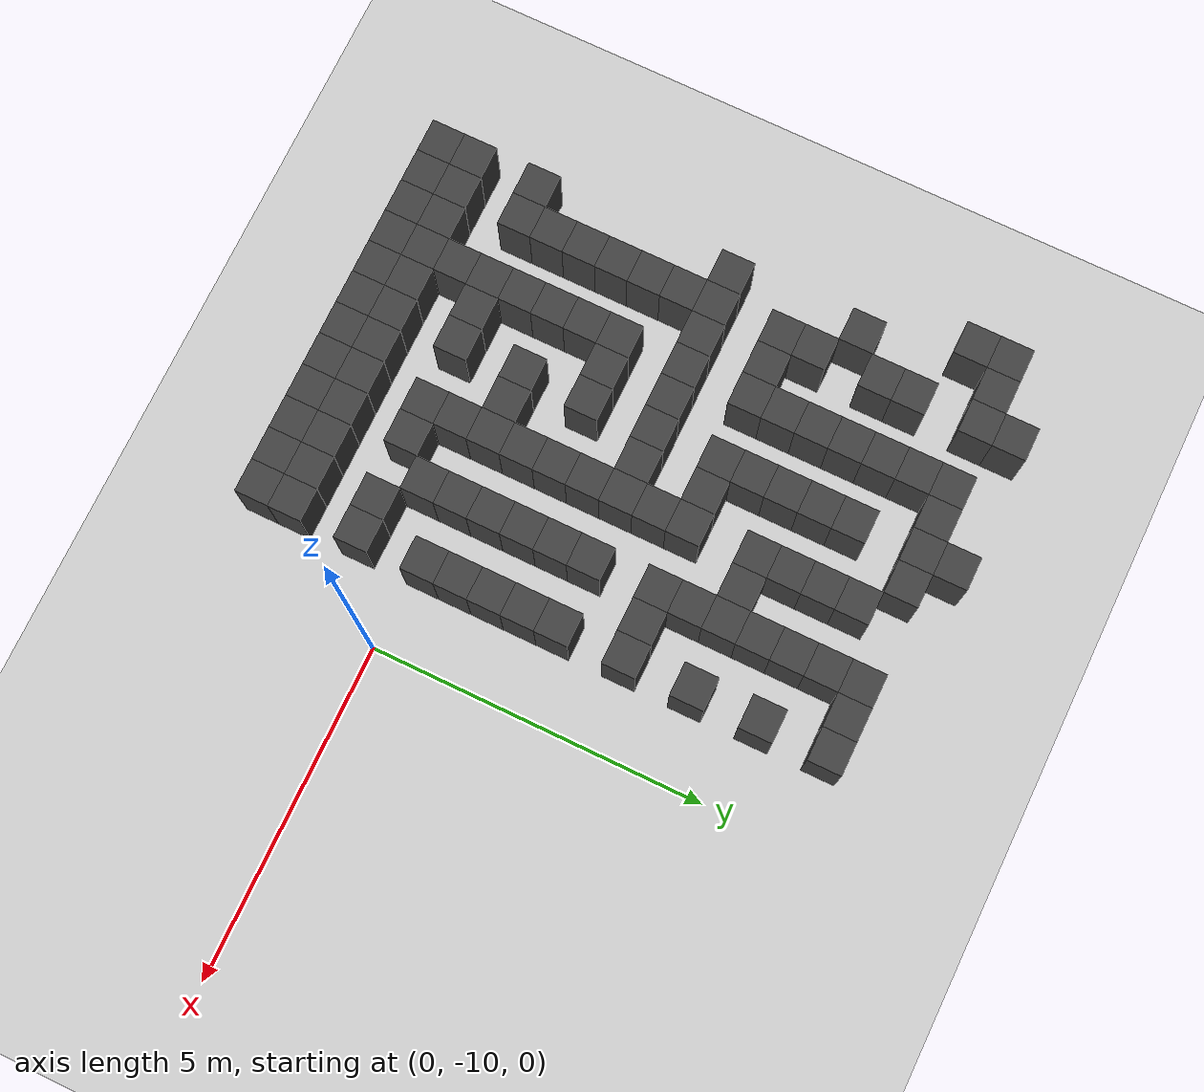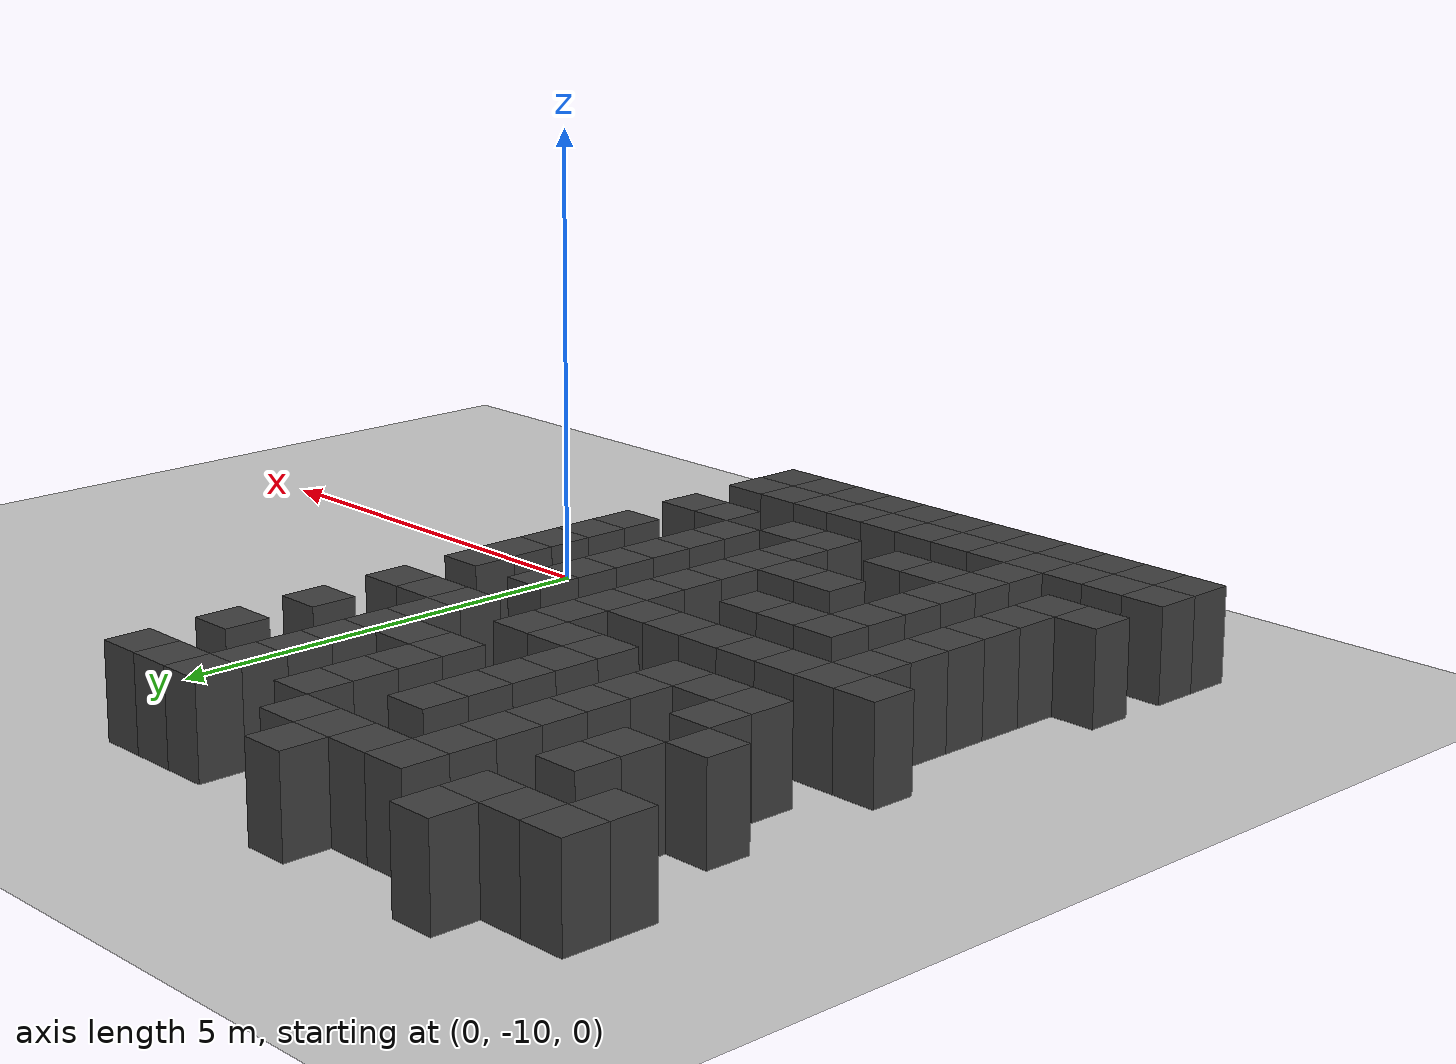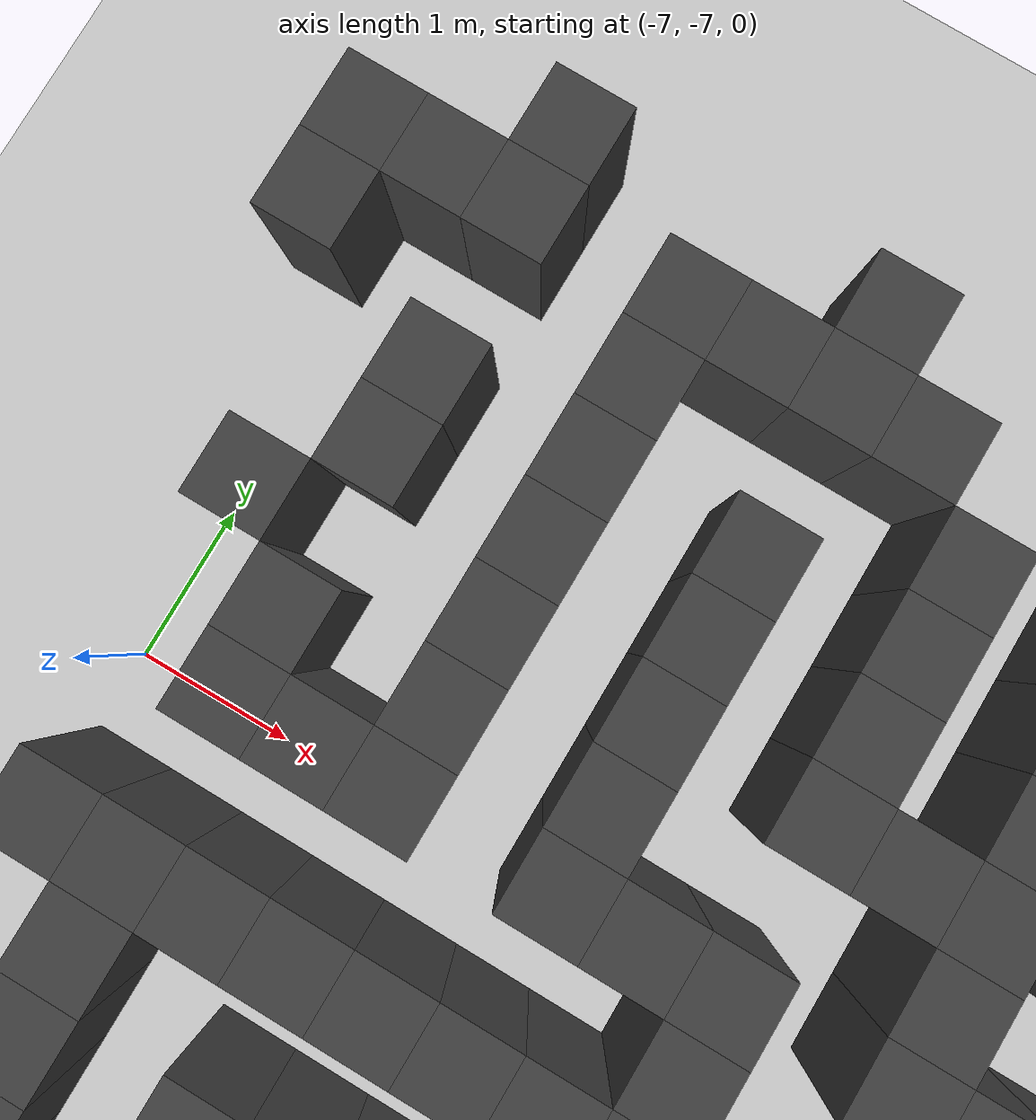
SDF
<sdf version="1.7">
 <world name="map_18814">
  <model name="ground_plane">
   <static>true</static>
   <link name="link">
    <collision name="collision">
     <geometry><plane><normal>0 0 1</normal><size>200 200</size></plane></geometry>
    </collision>
    <visual name="visual">
     <geometry><plane><normal>0 0 1</normal><size>200 200</size></plane></geometry>
     <material><ambient>0.8 0.8 0.8 1</ambient><diffuse>0.8 0.8 0.8 1</diffuse></material>
    </visual>
   </link>
  </model>
  <model name="maze_environment">
   <static>true</static>
   <link name="wall_803">
    <pose>-6.250 -3.250 0.500 0 0 0</pose>
    <collision name="col"><geometry><box><size>0.5 0.5 1.0</size></box></geometry></collision>
    <visual name="vis">
     <geometry><box><size>0.5 0.5 1.0</size></box></geometry>
     <material><ambient>0.15 0.15 0.15 1</ambient><diffuse>0.25 0.25 0.25 1</diffuse></material>
    </visual>
   </link>
   <link name="wall_804">
    <pose>-4.250 -3.250 0.500 0 0 0</pose>
    <collision name="col"><geometry><box><size>0.5 0.5 1.0</size></box></geometry></collision>
    <visual name="vis">
     <geometry><box><size>0.5 0.5 1.0</size></box></geometry>
     <material><ambient>0.15 0.15 0.15 1</ambient><diffuse>0.25 0.25 0.25 1</diffuse></material>
    </visual>
   </link>
   <link name="wall_819">
    <pose>-7.250 -3.750 0.500 0 0 0</pose>
    <collision name="col"><geometry><box><size>0.5 0.5 1.0</size></box></geometry></collision>
    <visual name="vis">
     <geometry><box><size>0.5 0.5 1.0</size></box></geometry>
     <material><ambient>0.15 0.15 0.15 1</ambient><diffuse>0.25 0.25 0.25 1</diffuse></material>
    </visual>
   </link>
   <link name="wall_820">
    <pose>-6.750 -3.750 0.500 0 0 0</pose>
    <collision name="col"><geometry><box><size>0.5 0.5 1.0</size></box></geometry></collision>
    <visual name="vis">
     <geometry><box><size>0.5 0.5 1.0</size></box></geometry>
     <material><ambient>0.15 0.15 0.15 1</ambient><diffuse>0.25 0.25 0.25 1</diffuse></material>
    </visual>
   </link>
   <link name="wall_821">
    <pose>-6.250 -3.750 0.500 0 0 0</pose>
    <collision name="col"><geometry><box><size>0.5 0.5 1.0</size></box></geometry></collision>
    <visual name="vis">
     <geometry><box><size>0.5 0.5 1.0</size></box></geometry>
     <material><ambient>0.15 0.15 0.15 1</ambient><diffuse>0.25 0.25 0.25 1</diffuse></material>
    </visual>
   </link>
   <link name="wall_822">
    <pose>-5.250 -3.750 0.500 0 0 0</pose>
    <collision name="col"><geometry><box><size>0.5 0.5 1.0</size></box></geometry></collision>
    <visual name="vis">
     <geometry><box><size>0.5 0.5 1.0</size></box></geometry>
     <material><ambient>0.15 0.15 0.15 1</ambient><diffuse>0.25 0.25 0.25 1</diffuse></material>
    </visual>
   </link>
   <link name="wall_823">
    <pose>-4.750 -3.750 0.500 0 0 0</pose>
    <collision name="col"><geometry><box><size>0.5 0.5 1.0</size></box></geometry></collision>
    <visual name="vis">
     <geometry><box><size>0.5 0.5 1.0</size></box></geometry>
     <material><ambient>0.15 0.15 0.15 1</ambient><diffuse>0.25 0.25 0.25 1</diffuse></material>
    </visual>
   </link>
   <link name="wall_824">
    <pose>-4.250 -3.750 0.500 0 0 0</pose>
    <collision name="col"><geometry><box><size>0.5 0.5 1.0</size></box></geometry></collision>
    <visual name="vis">
     <geometry><box><size>0.5 0.5 1.0</size></box></geometry>
     <material><ambient>0.15 0.15 0.15 1</ambient><diffuse>0.25 0.25 0.25 1</diffuse></material>
    </visual>
   </link>
   <link name="wall_825">
    <pose>-3.750 -3.750 0.500 0 0 0</pose>
    <collision name="col"><geometry><box><size>0.5 0.5 1.0</size></box></geometry></collision>
    <visual name="vis">
     <geometry><box><size>0.5 0.5 1.0</size></box></geometry>
     <material><ambient>0.15 0.15 0.15 1</ambient><diffuse>0.25 0.25 0.25 1</diffuse></material>
    </visual>
   </link>
   <link name="wall_826">
    <pose>-2.250 -3.750 0.500 0 0 0</pose>
    <collision name="col"><geometry><box><size>0.5 0.5 1.0</size></box></geometry></collision>
    <visual name="vis">
     <geometry><box><size>0.5 0.5 1.0</size></box></geometry>
     <material><ambient>0.15 0.15 0.15 1</ambient><diffuse>0.25 0.25 0.25 1</diffuse></material>
    </visual>
   </link>
   <link name="wall_827">
    <pose>-1.750 -3.750 0.500 0 0 0</pose>
    <collision name="col"><geometry><box><size>0.5 0.5 1.0</size></box></geometry></collision>
    <visual name="vis">
     <geometry><box><size>0.5 0.5 1.0</size></box></geometry>
     <material><ambient>0.15 0.15 0.15 1</ambient><diffuse>0.25 0.25 0.25 1</diffuse></material>
    </visual>
   </link>
   <link name="wall_828">
    <pose>-1.250 -3.750 0.500 0 0 0</pose>
    <collision name="col"><geometry><box><size>0.5 0.5 1.0</size></box></geometry></collision>
    <visual name="vis">
     <geometry><box><size>0.5 0.5 1.0</size></box></geometry>
     <material><ambient>0.15 0.15 0.15 1</ambient><diffuse>0.25 0.25 0.25 1</diffuse></material>
    </visual>
   </link>
   <link name="wall_852">
    <pose>-7.250 -4.250 0.500 0 0 0</pose>
    <collision name="col"><geometry><box><size>0.5 0.5 1.0</size></box></geometry></collision>
    <visual name="vis">
     <geometry><box><size>0.5 0.5 1.0</size></box></geometry>
     <material><ambient>0.15 0.15 0.15 1</ambient><diffuse>0.25 0.25 0.25 1</diffuse></material>
    </visual>
   </link>
   <link name="wall_853">
    <pose>-5.250 -4.250 0.500 0 0 0</pose>
    <collision name="col"><geometry><box><size>0.5 0.5 1.0</size></box></geometry></collision>
    <visual name="vis">
     <geometry><box><size>0.5 0.5 1.0</size></box></geometry>
     <material><ambient>0.15 0.15 0.15 1</ambient><diffuse>0.25 0.25 0.25 1</diffuse></material>
    </visual>
   </link>
   <link name="wall_854">
    <pose>-3.250 -4.250 0.500 0 0 0</pose>
    <collision name="col"><geometry><box><size>0.5 0.5 1.0</size></box></geometry></collision>
    <visual name="vis">
     <geometry><box><size>0.5 0.5 1.0</size></box></geometry>
     <material><ambient>0.15 0.15 0.15 1</ambient><diffuse>0.25 0.25 0.25 1</diffuse></material>
    </visual>
   </link>
   <link name="wall_855">
    <pose>-2.250 -4.250 0.500 0 0 0</pose>
    <collision name="col"><geometry><box><size>0.5 0.5 1.0</size></box></geometry></collision>
    <visual name="vis">
     <geometry><box><size>0.5 0.5 1.0</size></box></geometry>
     <material><ambient>0.15 0.15 0.15 1</ambient><diffuse>0.25 0.25 0.25 1</diffuse></material>
    </visual>
   </link>
   <link name="wall_872">
    <pose>-6.250 -4.750 0.500 0 0 0</pose>
    <collision name="col"><geometry><box><size>0.5 0.5 1.0</size></box></geometry></collision>
    <visual name="vis">
     <geometry><box><size>0.5 0.5 1.0</size></box></geometry>
     <material><ambient>0.15 0.15 0.15 1</ambient><diffuse>0.25 0.25 0.25 1</diffuse></material>
    </visual>
   </link>
   <link name="wall_873">
    <pose>-5.250 -4.750 0.500 0 0 0</pose>
    <collision name="col"><geometry><box><size>0.5 0.5 1.0</size></box></geometry></collision>
    <visual name="vis">
     <geometry><box><size>0.5 0.5 1.0</size></box></geometry>
     <material><ambient>0.15 0.15 0.15 1</ambient><diffuse>0.25 0.25 0.25 1</diffuse></material>
    </visual>
   </link>
   <link name="wall_874">
    <pose>-4.250 -4.750 0.500 0 0 0</pose>
    <collision name="col"><geometry><box><size>0.5 0.5 1.0</size></box></geometry></collision>
    <visual name="vis">
     <geometry><box><size>0.5 0.5 1.0</size></box></geometry>
     <material><ambient>0.15 0.15 0.15 1</ambient><diffuse>0.25 0.25 0.25 1</diffuse></material>
    </visual>
   </link>
   <link name="wall_875">
    <pose>-3.250 -4.750 0.500 0 0 0</pose>
    <collision name="col"><geometry><box><size>0.5 0.5 1.0</size></box></geometry></collision>
    <visual name="vis">
     <geometry><box><size>0.5 0.5 1.0</size></box></geometry>
     <material><ambient>0.15 0.15 0.15 1</ambient><diffuse>0.25 0.25 0.25 1</diffuse></material>
    </visual>
   </link>
   <link name="wall_876">
    <pose>-2.250 -4.750 0.500 0 0 0</pose>
    <collision name="col"><geometry><box><size>0.5 0.5 1.0</size></box></geometry></collision>
    <visual name="vis">
     <geometry><box><size>0.5 0.5 1.0</size></box></geometry>
     <material><ambient>0.15 0.15 0.15 1</ambient><diffuse>0.25 0.25 0.25 1</diffuse></material>
    </visual>
   </link>
   <link name="wall_877">
    <pose>-1.250 -4.750 0.500 0 0 0</pose>
    <collision name="col"><geometry><box><size>0.5 0.5 1.0</size></box></geometry></collision>
    <visual name="vis">
     <geometry><box><size>0.5 0.5 1.0</size></box></geometry>
     <material><ambient>0.15 0.15 0.15 1</ambient><diffuse>0.25 0.25 0.25 1</diffuse></material>
    </visual>
   </link>
   <link name="wall_903">
    <pose>-6.250 -5.250 0.500 0 0 0</pose>
    <collision name="col"><geometry><box><size>0.5 0.5 1.0</size></box></geometry></collision>
    <visual name="vis">
     <geometry><box><size>0.5 0.5 1.0</size></box></geometry>
     <material><ambient>0.15 0.15 0.15 1</ambient><diffuse>0.25 0.25 0.25 1</diffuse></material>
    </visual>
   </link>
   <link name="wall_904">
    <pose>-5.250 -5.250 0.500 0 0 0</pose>
    <collision name="col"><geometry><box><size>0.5 0.5 1.0</size></box></geometry></collision>
    <visual name="vis">
     <geometry><box><size>0.5 0.5 1.0</size></box></geometry>
     <material><ambient>0.15 0.15 0.15 1</ambient><diffuse>0.25 0.25 0.25 1</diffuse></material>
    </visual>
   </link>
   <link name="wall_905">
    <pose>-4.250 -5.250 0.500 0 0 0</pose>
    <collision name="col"><geometry><box><size>0.5 0.5 1.0</size></box></geometry></collision>
    <visual name="vis">
     <geometry><box><size>0.5 0.5 1.0</size></box></geometry>
     <material><ambient>0.15 0.15 0.15 1</ambient><diffuse>0.25 0.25 0.25 1</diffuse></material>
    </visual>
   </link>
   <link name="wall_906">
    <pose>-3.250 -5.250 0.500 0 0 0</pose>
    <collision name="col"><geometry><box><size>0.5 0.5 1.0</size></box></geometry></collision>
    <visual name="vis">
     <geometry><box><size>0.5 0.5 1.0</size></box></geometry>
     <material><ambient>0.15 0.15 0.15 1</ambient><diffuse>0.25 0.25 0.25 1</diffuse></material>
    </visual>
   </link>
   <link name="wall_907">
    <pose>-2.250 -5.250 0.500 0 0 0</pose>
    <collision name="col"><geometry><box><size>0.5 0.5 1.0</size></box></geometry></collision>
    <visual name="vis">
     <geometry><box><size>0.5 0.5 1.0</size></box></geometry>
     <material><ambient>0.15 0.15 0.15 1</ambient><diffuse>0.25 0.25 0.25 1</diffuse></material>
    </visual>
   </link>
   <link name="wall_921">
    <pose>-6.750 -5.750 0.500 0 0 0</pose>
    <collision name="col"><geometry><box><size>0.5 0.5 1.0</size></box></geometry></collision>
    <visual name="vis">
     <geometry><box><size>0.5 0.5 1.0</size></box></geometry>
     <material><ambient>0.15 0.15 0.15 1</ambient><diffuse>0.25 0.25 0.25 1</diffuse></material>
    </visual>
   </link>
   <link name="wall_922">
    <pose>-5.250 -5.750 0.500 0 0 0</pose>
    <collision name="col"><geometry><box><size>0.5 0.5 1.0</size></box></geometry></collision>
    <visual name="vis">
     <geometry><box><size>0.5 0.5 1.0</size></box></geometry>
     <material><ambient>0.15 0.15 0.15 1</ambient><diffuse>0.25 0.25 0.25 1</diffuse></material>
    </visual>
   </link>
   <link name="wall_923">
    <pose>-4.250 -5.750 0.500 0 0 0</pose>
    <collision name="col"><geometry><box><size>0.5 0.5 1.0</size></box></geometry></collision>
    <visual name="vis">
     <geometry><box><size>0.5 0.5 1.0</size></box></geometry>
     <material><ambient>0.15 0.15 0.15 1</ambient><diffuse>0.25 0.25 0.25 1</diffuse></material>
    </visual>
   </link>
   <link name="wall_924">
    <pose>-3.250 -5.750 0.500 0 0 0</pose>
    <collision name="col"><geometry><box><size>0.5 0.5 1.0</size></box></geometry></collision>
    <visual name="vis">
     <geometry><box><size>0.5 0.5 1.0</size></box></geometry>
     <material><ambient>0.15 0.15 0.15 1</ambient><diffuse>0.25 0.25 0.25 1</diffuse></material>
    </visual>
   </link>
   <link name="wall_925">
    <pose>-2.750 -5.750 0.500 0 0 0</pose>
    <collision name="col"><geometry><box><size>0.5 0.5 1.0</size></box></geometry></collision>
    <visual name="vis">
     <geometry><box><size>0.5 0.5 1.0</size></box></geometry>
     <material><ambient>0.15 0.15 0.15 1</ambient><diffuse>0.25 0.25 0.25 1</diffuse></material>
    </visual>
   </link>
   <link name="wall_926">
    <pose>-2.250 -5.750 0.500 0 0 0</pose>
    <collision name="col"><geometry><box><size>0.5 0.5 1.0</size></box></geometry></collision>
    <visual name="vis">
     <geometry><box><size>0.5 0.5 1.0</size></box></geometry>
     <material><ambient>0.15 0.15 0.15 1</ambient><diffuse>0.25 0.25 0.25 1</diffuse></material>
    </visual>
   </link>
   <link name="wall_927">
    <pose>-1.250 -5.750 0.500 0 0 0</pose>
    <collision name="col"><geometry><box><size>0.5 0.5 1.0</size></box></geometry></collision>
    <visual name="vis">
     <geometry><box><size>0.5 0.5 1.0</size></box></geometry>
     <material><ambient>0.15 0.15 0.15 1</ambient><diffuse>0.25 0.25 0.25 1</diffuse></material>
    </visual>
   </link>
   <link name="wall_954">
    <pose>-6.250 -6.250 0.500 0 0 0</pose>
    <collision name="col"><geometry><box><size>0.5 0.5 1.0</size></box></geometry></collision>
    <visual name="vis">
     <geometry><box><size>0.5 0.5 1.0</size></box></geometry>
     <material><ambient>0.15 0.15 0.15 1</ambient><diffuse>0.25 0.25 0.25 1</diffuse></material>
    </visual>
   </link>
   <link name="wall_955">
    <pose>-5.250 -6.250 0.500 0 0 0</pose>
    <collision name="col"><geometry><box><size>0.5 0.5 1.0</size></box></geometry></collision>
    <visual name="vis">
     <geometry><box><size>0.5 0.5 1.0</size></box></geometry>
     <material><ambient>0.15 0.15 0.15 1</ambient><diffuse>0.25 0.25 0.25 1</diffuse></material>
    </visual>
   </link>
   <link name="wall_956">
    <pose>-4.250 -6.250 0.500 0 0 0</pose>
    <collision name="col"><geometry><box><size>0.5 0.5 1.0</size></box></geometry></collision>
    <visual name="vis">
     <geometry><box><size>0.5 0.5 1.0</size></box></geometry>
     <material><ambient>0.15 0.15 0.15 1</ambient><diffuse>0.25 0.25 0.25 1</diffuse></material>
    </visual>
   </link>
   <link name="wall_957">
    <pose>-2.250 -6.250 0.500 0 0 0</pose>
    <collision name="col"><geometry><box><size>0.5 0.5 1.0</size></box></geometry></collision>
    <visual name="vis">
     <geometry><box><size>0.5 0.5 1.0</size></box></geometry>
     <material><ambient>0.15 0.15 0.15 1</ambient><diffuse>0.25 0.25 0.25 1</diffuse></material>
    </visual>
   </link>
   <link name="wall_973">
    <pose>-6.250 -6.750 0.500 0 0 0</pose>
    <collision name="col"><geometry><box><size>0.5 0.5 1.0</size></box></geometry></collision>
    <visual name="vis">
     <geometry><box><size>0.5 0.5 1.0</size></box></geometry>
     <material><ambient>0.15 0.15 0.15 1</ambient><diffuse>0.25 0.25 0.25 1</diffuse></material>
    </visual>
   </link>
   <link name="wall_974">
    <pose>-5.750 -6.750 0.500 0 0 0</pose>
    <collision name="col"><geometry><box><size>0.5 0.5 1.0</size></box></geometry></collision>
    <visual name="vis">
     <geometry><box><size>0.5 0.5 1.0</size></box></geometry>
     <material><ambient>0.15 0.15 0.15 1</ambient><diffuse>0.25 0.25 0.25 1</diffuse></material>
    </visual>
   </link>
   <link name="wall_975">
    <pose>-5.250 -6.750 0.500 0 0 0</pose>
    <collision name="col"><geometry><box><size>0.5 0.5 1.0</size></box></geometry></collision>
    <visual name="vis">
     <geometry><box><size>0.5 0.5 1.0</size></box></geometry>
     <material><ambient>0.15 0.15 0.15 1</ambient><diffuse>0.25 0.25 0.25 1</diffuse></material>
    </visual>
   </link>
   <link name="wall_976">
    <pose>-4.250 -6.750 0.500 0 0 0</pose>
    <collision name="col"><geometry><box><size>0.5 0.5 1.0</size></box></geometry></collision>
    <visual name="vis">
     <geometry><box><size>0.5 0.5 1.0</size></box></geometry>
     <material><ambient>0.15 0.15 0.15 1</ambient><diffuse>0.25 0.25 0.25 1</diffuse></material>
    </visual>
   </link>
   <link name="wall_977">
    <pose>-3.750 -6.750 0.500 0 0 0</pose>
    <collision name="col"><geometry><box><size>0.5 0.5 1.0</size></box></geometry></collision>
    <visual name="vis">
     <geometry><box><size>0.5 0.5 1.0</size></box></geometry>
     <material><ambient>0.15 0.15 0.15 1</ambient><diffuse>0.25 0.25 0.25 1</diffuse></material>
    </visual>
   </link>
   <link name="wall_978">
    <pose>-3.250 -6.750 0.500 0 0 0</pose>
    <collision name="col"><geometry><box><size>0.5 0.5 1.0</size></box></geometry></collision>
    <visual name="vis">
     <geometry><box><size>0.5 0.5 1.0</size></box></geometry>
     <material><ambient>0.15 0.15 0.15 1</ambient><diffuse>0.25 0.25 0.25 1</diffuse></material>
    </visual>
   </link>
   <link name="wall_979">
    <pose>-2.250 -6.750 0.500 0 0 0</pose>
    <collision name="col"><geometry><box><size>0.5 0.5 1.0</size></box></geometry></collision>
    <visual name="vis">
     <geometry><box><size>0.5 0.5 1.0</size></box></geometry>
     <material><ambient>0.15 0.15 0.15 1</ambient><diffuse>0.25 0.25 0.25 1</diffuse></material>
    </visual>
   </link>
   <link name="wall_980">
    <pose>-1.750 -6.750 0.500 0 0 0</pose>
    <collision name="col"><geometry><box><size>0.5 0.5 1.0</size></box></geometry></collision>
    <visual name="vis">
     <geometry><box><size>0.5 0.5 1.0</size></box></geometry>
     <material><ambient>0.15 0.15 0.15 1</ambient><diffuse>0.25 0.25 0.25 1</diffuse></material>
    </visual>
   </link>
   <link name="wall_981">
    <pose>-1.250 -6.750 0.500 0 0 0</pose>
    <collision name="col"><geometry><box><size>0.5 0.5 1.0</size></box></geometry></collision>
    <visual name="vis">
     <geometry><box><size>0.5 0.5 1.0</size></box></geometry>
     <material><ambient>0.15 0.15 0.15 1</ambient><diffuse>0.25 0.25 0.25 1</diffuse></material>
    </visual>
   </link>
   <link name="wall_1005">
    <pose>-3.250 -7.250 0.500 0 0 0</pose>
    <collision name="col"><geometry><box><size>0.5 0.5 1.0</size></box></geometry></collision>
    <visual name="vis">
     <geometry><box><size>0.5 0.5 1.0</size></box></geometry>
     <material><ambient>0.15 0.15 0.15 1</ambient><diffuse>0.25 0.25 0.25 1</diffuse></material>
    </visual>
   </link>
   <link name="wall_1023">
    <pose>-6.750 -7.750 0.500 0 0 0</pose>
    <collision name="col"><geometry><box><size>0.5 0.5 1.0</size></box></geometry></collision>
    <visual name="vis">
     <geometry><box><size>0.5 0.5 1.0</size></box></geometry>
     <material><ambient>0.15 0.15 0.15 1</ambient><diffuse>0.25 0.25 0.25 1</diffuse></material>
    </visual>
   </link>
   <link name="wall_1024">
    <pose>-6.250 -7.750 0.500 0 0 0</pose>
    <collision name="col"><geometry><box><size>0.5 0.5 1.0</size></box></geometry></collision>
    <visual name="vis">
     <geometry><box><size>0.5 0.5 1.0</size></box></geometry>
     <material><ambient>0.15 0.15 0.15 1</ambient><diffuse>0.25 0.25 0.25 1</diffuse></material>
    </visual>
   </link>
   <link name="wall_1025">
    <pose>-5.750 -7.750 0.500 0 0 0</pose>
    <collision name="col"><geometry><box><size>0.5 0.5 1.0</size></box></geometry></collision>
    <visual name="vis">
     <geometry><box><size>0.5 0.5 1.0</size></box></geometry>
     <material><ambient>0.15 0.15 0.15 1</ambient><diffuse>0.25 0.25 0.25 1</diffuse></material>
    </visual>
   </link>
   <link name="wall_1026">
    <pose>-5.250 -7.750 0.500 0 0 0</pose>
    <collision name="col"><geometry><box><size>0.5 0.5 1.0</size></box></geometry></collision>
    <visual name="vis">
     <geometry><box><size>0.5 0.5 1.0</size></box></geometry>
     <material><ambient>0.15 0.15 0.15 1</ambient><diffuse>0.25 0.25 0.25 1</diffuse></material>
    </visual>
   </link>
   <link name="wall_1027">
    <pose>-4.750 -7.750 0.500 0 0 0</pose>
    <collision name="col"><geometry><box><size>0.5 0.5 1.0</size></box></geometry></collision>
    <visual name="vis">
     <geometry><box><size>0.5 0.5 1.0</size></box></geometry>
     <material><ambient>0.15 0.15 0.15 1</ambient><diffuse>0.25 0.25 0.25 1</diffuse></material>
    </visual>
   </link>
   <link name="wall_1028">
    <pose>-4.250 -7.750 0.500 0 0 0</pose>
    <collision name="col"><geometry><box><size>0.5 0.5 1.0</size></box></geometry></collision>
    <visual name="vis">
     <geometry><box><size>0.5 0.5 1.0</size></box></geometry>
     <material><ambient>0.15 0.15 0.15 1</ambient><diffuse>0.25 0.25 0.25 1</diffuse></material>
    </visual>
   </link>
   <link name="wall_1029">
    <pose>-3.750 -7.750 0.500 0 0 0</pose>
    <collision name="col"><geometry><box><size>0.5 0.5 1.0</size></box></geometry></collision>
    <visual name="vis">
     <geometry><box><size>0.5 0.5 1.0</size></box></geometry>
     <material><ambient>0.15 0.15 0.15 1</ambient><diffuse>0.25 0.25 0.25 1</diffuse></material>
    </visual>
   </link>
   <link name="wall_1030">
    <pose>-3.250 -7.750 0.500 0 0 0</pose>
    <collision name="col"><geometry><box><size>0.5 0.5 1.0</size></box></geometry></collision>
    <visual name="vis">
     <geometry><box><size>0.5 0.5 1.0</size></box></geometry>
     <material><ambient>0.15 0.15 0.15 1</ambient><diffuse>0.25 0.25 0.25 1</diffuse></material>
    </visual>
   </link>
   <link name="wall_1031">
    <pose>-2.250 -7.750 0.500 0 0 0</pose>
    <collision name="col"><geometry><box><size>0.5 0.5 1.0</size></box></geometry></collision>
    <visual name="vis">
     <geometry><box><size>0.5 0.5 1.0</size></box></geometry>
     <material><ambient>0.15 0.15 0.15 1</ambient><diffuse>0.25 0.25 0.25 1</diffuse></material>
    </visual>
   </link>
   <link name="wall_1032">
    <pose>-1.250 -7.750 0.500 0 0 0</pose>
    <collision name="col"><geometry><box><size>0.5 0.5 1.0</size></box></geometry></collision>
    <visual name="vis">
     <geometry><box><size>0.5 0.5 1.0</size></box></geometry>
     <material><ambient>0.15 0.15 0.15 1</ambient><diffuse>0.25 0.25 0.25 1</diffuse></material>
    </visual>
   </link>
   <link name="wall_1053">
    <pose>-6.250 -8.250 0.500 0 0 0</pose>
    <collision name="col"><geometry><box><size>0.5 0.5 1.0</size></box></geometry></collision>
    <visual name="vis">
     <geometry><box><size>0.5 0.5 1.0</size></box></geometry>
     <material><ambient>0.15 0.15 0.15 1</ambient><diffuse>0.25 0.25 0.25 1</diffuse></material>
    </visual>
   </link>
   <link name="wall_1054">
    <pose>-3.250 -8.250 0.500 0 0 0</pose>
    <collision name="col"><geometry><box><size>0.5 0.5 1.0</size></box></geometry></collision>
    <visual name="vis">
     <geometry><box><size>0.5 0.5 1.0</size></box></geometry>
     <material><ambient>0.15 0.15 0.15 1</ambient><diffuse>0.25 0.25 0.25 1</diffuse></material>
    </visual>
   </link>
   <link name="wall_1055">
    <pose>-2.250 -8.250 0.500 0 0 0</pose>
    <collision name="col"><geometry><box><size>0.5 0.5 1.0</size></box></geometry></collision>
    <visual name="vis">
     <geometry><box><size>0.5 0.5 1.0</size></box></geometry>
     <material><ambient>0.15 0.15 0.15 1</ambient><diffuse>0.25 0.25 0.25 1</diffuse></material>
    </visual>
   </link>
   <link name="wall_1056">
    <pose>-1.250 -8.250 0.500 0 0 0</pose>
    <collision name="col"><geometry><box><size>0.5 0.5 1.0</size></box></geometry></collision>
    <visual name="vis">
     <geometry><box><size>0.5 0.5 1.0</size></box></geometry>
     <material><ambient>0.15 0.15 0.15 1</ambient><diffuse>0.25 0.25 0.25 1</diffuse></material>
    </visual>
   </link>
   <link name="wall_1075">
    <pose>-6.250 -8.750 0.500 0 0 0</pose>
    <collision name="col"><geometry><box><size>0.5 0.5 1.0</size></box></geometry></collision>
    <visual name="vis">
     <geometry><box><size>0.5 0.5 1.0</size></box></geometry>
     <material><ambient>0.15 0.15 0.15 1</ambient><diffuse>0.25 0.25 0.25 1</diffuse></material>
    </visual>
   </link>
   <link name="wall_1076">
    <pose>-5.250 -8.750 0.500 0 0 0</pose>
    <collision name="col"><geometry><box><size>0.5 0.5 1.0</size></box></geometry></collision>
    <visual name="vis">
     <geometry><box><size>0.5 0.5 1.0</size></box></geometry>
     <material><ambient>0.15 0.15 0.15 1</ambient><diffuse>0.25 0.25 0.25 1</diffuse></material>
    </visual>
   </link>
   <link name="wall_1077">
    <pose>-4.750 -8.750 0.500 0 0 0</pose>
    <collision name="col"><geometry><box><size>0.5 0.5 1.0</size></box></geometry></collision>
    <visual name="vis">
     <geometry><box><size>0.5 0.5 1.0</size></box></geometry>
     <material><ambient>0.15 0.15 0.15 1</ambient><diffuse>0.25 0.25 0.25 1</diffuse></material>
    </visual>
   </link>
   <link name="wall_1078">
    <pose>-4.250 -8.750 0.500 0 0 0</pose>
    <collision name="col"><geometry><box><size>0.5 0.5 1.0</size></box></geometry></collision>
    <visual name="vis">
     <geometry><box><size>0.5 0.5 1.0</size></box></geometry>
     <material><ambient>0.15 0.15 0.15 1</ambient><diffuse>0.25 0.25 0.25 1</diffuse></material>
    </visual>
   </link>
   <link name="wall_1079">
    <pose>-3.250 -8.750 0.500 0 0 0</pose>
    <collision name="col"><geometry><box><size>0.5 0.5 1.0</size></box></geometry></collision>
    <visual name="vis">
     <geometry><box><size>0.5 0.5 1.0</size></box></geometry>
     <material><ambient>0.15 0.15 0.15 1</ambient><diffuse>0.25 0.25 0.25 1</diffuse></material>
    </visual>
   </link>
   <link name="wall_1080">
    <pose>-2.250 -8.750 0.500 0 0 0</pose>
    <collision name="col"><geometry><box><size>0.5 0.5 1.0</size></box></geometry></collision>
    <visual name="vis">
     <geometry><box><size>0.5 0.5 1.0</size></box></geometry>
     <material><ambient>0.15 0.15 0.15 1</ambient><diffuse>0.25 0.25 0.25 1</diffuse></material>
    </visual>
   </link>
   <link name="wall_1081">
    <pose>-1.250 -8.750 0.500 0 0 0</pose>
    <collision name="col"><geometry><box><size>0.5 0.5 1.0</size></box></geometry></collision>
    <visual name="vis">
     <geometry><box><size>0.5 0.5 1.0</size></box></geometry>
     <material><ambient>0.15 0.15 0.15 1</ambient><diffuse>0.25 0.25 0.25 1</diffuse></material>
    </visual>
   </link>
   <link name="wall_1104">
    <pose>-6.250 -9.250 0.500 0 0 0</pose>
    <collision name="col"><geometry><box><size>0.5 0.5 1.0</size></box></geometry></collision>
    <visual name="vis">
     <geometry><box><size>0.5 0.5 1.0</size></box></geometry>
     <material><ambient>0.15 0.15 0.15 1</ambient><diffuse>0.25 0.25 0.25 1</diffuse></material>
    </visual>
   </link>
   <link name="wall_1105">
    <pose>-5.250 -9.250 0.500 0 0 0</pose>
    <collision name="col"><geometry><box><size>0.5 0.5 1.0</size></box></geometry></collision>
    <visual name="vis">
     <geometry><box><size>0.5 0.5 1.0</size></box></geometry>
     <material><ambient>0.15 0.15 0.15 1</ambient><diffuse>0.25 0.25 0.25 1</diffuse></material>
    </visual>
   </link>
   <link name="wall_1106">
    <pose>-3.250 -9.250 0.500 0 0 0</pose>
    <collision name="col"><geometry><box><size>0.5 0.5 1.0</size></box></geometry></collision>
    <visual name="vis">
     <geometry><box><size>0.5 0.5 1.0</size></box></geometry>
     <material><ambient>0.15 0.15 0.15 1</ambient><diffuse>0.25 0.25 0.25 1</diffuse></material>
    </visual>
   </link>
   <link name="wall_1107">
    <pose>-2.250 -9.250 0.500 0 0 0</pose>
    <collision name="col"><geometry><box><size>0.5 0.5 1.0</size></box></geometry></collision>
    <visual name="vis">
     <geometry><box><size>0.5 0.5 1.0</size></box></geometry>
     <material><ambient>0.15 0.15 0.15 1</ambient><diffuse>0.25 0.25 0.25 1</diffuse></material>
    </visual>
   </link>
   <link name="wall_1108">
    <pose>-1.250 -9.250 0.500 0 0 0</pose>
    <collision name="col"><geometry><box><size>0.5 0.5 1.0</size></box></geometry></collision>
    <visual name="vis">
     <geometry><box><size>0.5 0.5 1.0</size></box></geometry>
     <material><ambient>0.15 0.15 0.15 1</ambient><diffuse>0.25 0.25 0.25 1</diffuse></material>
    </visual>
   </link>
   <link name="wall_1126">
    <pose>-6.250 -9.750 0.500 0 0 0</pose>
    <collision name="col"><geometry><box><size>0.5 0.5 1.0</size></box></geometry></collision>
    <visual name="vis">
     <geometry><box><size>0.5 0.5 1.0</size></box></geometry>
     <material><ambient>0.15 0.15 0.15 1</ambient><diffuse>0.25 0.25 0.25 1</diffuse></material>
    </visual>
   </link>
   <link name="wall_1127">
    <pose>-5.250 -9.750 0.500 0 0 0</pose>
    <collision name="col"><geometry><box><size>0.5 0.5 1.0</size></box></geometry></collision>
    <visual name="vis">
     <geometry><box><size>0.5 0.5 1.0</size></box></geometry>
     <material><ambient>0.15 0.15 0.15 1</ambient><diffuse>0.25 0.25 0.25 1</diffuse></material>
    </visual>
   </link>
   <link name="wall_1128">
    <pose>-4.250 -9.750 0.500 0 0 0</pose>
    <collision name="col"><geometry><box><size>0.5 0.5 1.0</size></box></geometry></collision>
    <visual name="vis">
     <geometry><box><size>0.5 0.5 1.0</size></box></geometry>
     <material><ambient>0.15 0.15 0.15 1</ambient><diffuse>0.25 0.25 0.25 1</diffuse></material>
    </visual>
   </link>
   <link name="wall_1129">
    <pose>-3.750 -9.750 0.500 0 0 0</pose>
    <collision name="col"><geometry><box><size>0.5 0.5 1.0</size></box></geometry></collision>
    <visual name="vis">
     <geometry><box><size>0.5 0.5 1.0</size></box></geometry>
     <material><ambient>0.15 0.15 0.15 1</ambient><diffuse>0.25 0.25 0.25 1</diffuse></material>
    </visual>
   </link>
   <link name="wall_1130">
    <pose>-3.250 -9.750 0.500 0 0 0</pose>
    <collision name="col"><geometry><box><size>0.5 0.5 1.0</size></box></geometry></collision>
    <visual name="vis">
     <geometry><box><size>0.5 0.5 1.0</size></box></geometry>
     <material><ambient>0.15 0.15 0.15 1</ambient><diffuse>0.25 0.25 0.25 1</diffuse></material>
    </visual>
   </link>
   <link name="wall_1131">
    <pose>-2.250 -9.750 0.500 0 0 0</pose>
    <collision name="col"><geometry><box><size>0.5 0.5 1.0</size></box></geometry></collision>
    <visual name="vis">
     <geometry><box><size>0.5 0.5 1.0</size></box></geometry>
     <material><ambient>0.15 0.15 0.15 1</ambient><diffuse>0.25 0.25 0.25 1</diffuse></material>
    </visual>
   </link>
   <link name="wall_1132">
    <pose>-1.250 -9.750 0.500 0 0 0</pose>
    <collision name="col"><geometry><box><size>0.5 0.5 1.0</size></box></geometry></collision>
    <visual name="vis">
     <geometry><box><size>0.5 0.5 1.0</size></box></geometry>
     <material><ambient>0.15 0.15 0.15 1</ambient><diffuse>0.25 0.25 0.25 1</diffuse></material>
    </visual>
   </link>
   <link name="wall_1156">
    <pose>-6.250 -10.250 0.500 0 0 0</pose>
    <collision name="col"><geometry><box><size>0.5 0.5 1.0</size></box></geometry></collision>
    <visual name="vis">
     <geometry><box><size>0.5 0.5 1.0</size></box></geometry>
     <material><ambient>0.15 0.15 0.15 1</ambient><diffuse>0.25 0.25 0.25 1</diffuse></material>
    </visual>
   </link>
   <link name="wall_1157">
    <pose>-5.250 -10.250 0.500 0 0 0</pose>
    <collision name="col"><geometry><box><size>0.5 0.5 1.0</size></box></geometry></collision>
    <visual name="vis">
     <geometry><box><size>0.5 0.5 1.0</size></box></geometry>
     <material><ambient>0.15 0.15 0.15 1</ambient><diffuse>0.25 0.25 0.25 1</diffuse></material>
    </visual>
   </link>
   <link name="wall_1158">
    <pose>-3.250 -10.250 0.500 0 0 0</pose>
    <collision name="col"><geometry><box><size>0.5 0.5 1.0</size></box></geometry></collision>
    <visual name="vis">
     <geometry><box><size>0.5 0.5 1.0</size></box></geometry>
     <material><ambient>0.15 0.15 0.15 1</ambient><diffuse>0.25 0.25 0.25 1</diffuse></material>
    </visual>
   </link>
   <link name="wall_1159">
    <pose>-2.250 -10.250 0.500 0 0 0</pose>
    <collision name="col"><geometry><box><size>0.5 0.5 1.0</size></box></geometry></collision>
    <visual name="vis">
     <geometry><box><size>0.5 0.5 1.0</size></box></geometry>
     <material><ambient>0.15 0.15 0.15 1</ambient><diffuse>0.25 0.25 0.25 1</diffuse></material>
    </visual>
   </link>
   <link name="wall_1177">
    <pose>-6.750 -10.750 0.500 0 0 0</pose>
    <collision name="col"><geometry><box><size>0.5 0.5 1.0</size></box></geometry></collision>
    <visual name="vis">
     <geometry><box><size>0.5 0.5 1.0</size></box></geometry>
     <material><ambient>0.15 0.15 0.15 1</ambient><diffuse>0.25 0.25 0.25 1</diffuse></material>
    </visual>
   </link>
   <link name="wall_1178">
    <pose>-6.250 -10.750 0.500 0 0 0</pose>
    <collision name="col"><geometry><box><size>0.5 0.5 1.0</size></box></geometry></collision>
    <visual name="vis">
     <geometry><box><size>0.5 0.5 1.0</size></box></geometry>
     <material><ambient>0.15 0.15 0.15 1</ambient><diffuse>0.25 0.25 0.25 1</diffuse></material>
    </visual>
   </link>
   <link name="wall_1179">
    <pose>-5.250 -10.750 0.500 0 0 0</pose>
    <collision name="col"><geometry><box><size>0.5 0.5 1.0</size></box></geometry></collision>
    <visual name="vis">
     <geometry><box><size>0.5 0.5 1.0</size></box></geometry>
     <material><ambient>0.15 0.15 0.15 1</ambient><diffuse>0.25 0.25 0.25 1</diffuse></material>
    </visual>
   </link>
   <link name="wall_1180">
    <pose>-4.750 -10.750 0.500 0 0 0</pose>
    <collision name="col"><geometry><box><size>0.5 0.5 1.0</size></box></geometry></collision>
    <visual name="vis">
     <geometry><box><size>0.5 0.5 1.0</size></box></geometry>
     <material><ambient>0.15 0.15 0.15 1</ambient><diffuse>0.25 0.25 0.25 1</diffuse></material>
    </visual>
   </link>
   <link name="wall_1181">
    <pose>-4.250 -10.750 0.500 0 0 0</pose>
    <collision name="col"><geometry><box><size>0.5 0.5 1.0</size></box></geometry></collision>
    <visual name="vis">
     <geometry><box><size>0.5 0.5 1.0</size></box></geometry>
     <material><ambient>0.15 0.15 0.15 1</ambient><diffuse>0.25 0.25 0.25 1</diffuse></material>
    </visual>
   </link>
   <link name="wall_1182">
    <pose>-3.250 -10.750 0.500 0 0 0</pose>
    <collision name="col"><geometry><box><size>0.5 0.5 1.0</size></box></geometry></collision>
    <visual name="vis">
     <geometry><box><size>0.5 0.5 1.0</size></box></geometry>
     <material><ambient>0.15 0.15 0.15 1</ambient><diffuse>0.25 0.25 0.25 1</diffuse></material>
    </visual>
   </link>
   <link name="wall_1183">
    <pose>-2.750 -10.750 0.500 0 0 0</pose>
    <collision name="col"><geometry><box><size>0.5 0.5 1.0</size></box></geometry></collision>
    <visual name="vis">
     <geometry><box><size>0.5 0.5 1.0</size></box></geometry>
     <material><ambient>0.15 0.15 0.15 1</ambient><diffuse>0.25 0.25 0.25 1</diffuse></material>
    </visual>
   </link>
   <link name="wall_1184">
    <pose>-1.750 -10.750 0.500 0 0 0</pose>
    <collision name="col"><geometry><box><size>0.5 0.5 1.0</size></box></geometry></collision>
    <visual name="vis">
     <geometry><box><size>0.5 0.5 1.0</size></box></geometry>
     <material><ambient>0.15 0.15 0.15 1</ambient><diffuse>0.25 0.25 0.25 1</diffuse></material>
    </visual>
   </link>
   <link name="wall_1185">
    <pose>-1.250 -10.750 0.500 0 0 0</pose>
    <collision name="col"><geometry><box><size>0.5 0.5 1.0</size></box></geometry></collision>
    <visual name="vis">
     <geometry><box><size>0.5 0.5 1.0</size></box></geometry>
     <material><ambient>0.15 0.15 0.15 1</ambient><diffuse>0.25 0.25 0.25 1</diffuse></material>
    </visual>
   </link>
   <link name="wall_1204">
    <pose>-5.250 -11.250 0.500 0 0 0</pose>
    <collision name="col"><geometry><box><size>0.5 0.5 1.0</size></box></geometry></collision>
    <visual name="vis">
     <geometry><box><size>0.5 0.5 1.0</size></box></geometry>
     <material><ambient>0.15 0.15 0.15 1</ambient><diffuse>0.25 0.25 0.25 1</diffuse></material>
    </visual>
   </link>
   <link name="wall_1221">
    <pose>-6.750 -11.750 0.500 0 0 0</pose>
    <collision name="col"><geometry><box><size>0.5 0.5 1.0</size></box></geometry></collision>
    <visual name="vis">
     <geometry><box><size>0.5 0.5 1.0</size></box></geometry>
     <material><ambient>0.15 0.15 0.15 1</ambient><diffuse>0.25 0.25 0.25 1</diffuse></material>
    </visual>
   </link>
   <link name="wall_1222">
    <pose>-6.250 -11.750 0.500 0 0 0</pose>
    <collision name="col"><geometry><box><size>0.5 0.5 1.0</size></box></geometry></collision>
    <visual name="vis">
     <geometry><box><size>0.5 0.5 1.0</size></box></geometry>
     <material><ambient>0.15 0.15 0.15 1</ambient><diffuse>0.25 0.25 0.25 1</diffuse></material>
    </visual>
   </link>
   <link name="wall_1223">
    <pose>-5.750 -11.750 0.500 0 0 0</pose>
    <collision name="col"><geometry><box><size>0.5 0.5 1.0</size></box></geometry></collision>
    <visual name="vis">
     <geometry><box><size>0.5 0.5 1.0</size></box></geometry>
     <material><ambient>0.15 0.15 0.15 1</ambient><diffuse>0.25 0.25 0.25 1</diffuse></material>
    </visual>
   </link>
   <link name="wall_1224">
    <pose>-5.250 -11.750 0.500 0 0 0</pose>
    <collision name="col"><geometry><box><size>0.5 0.5 1.0</size></box></geometry></collision>
    <visual name="vis">
     <geometry><box><size>0.5 0.5 1.0</size></box></geometry>
     <material><ambient>0.15 0.15 0.15 1</ambient><diffuse>0.25 0.25 0.25 1</diffuse></material>
    </visual>
   </link>
   <link name="wall_1225">
    <pose>-4.750 -11.750 0.500 0 0 0</pose>
    <collision name="col"><geometry><box><size>0.5 0.5 1.0</size></box></geometry></collision>
    <visual name="vis">
     <geometry><box><size>0.5 0.5 1.0</size></box></geometry>
     <material><ambient>0.15 0.15 0.15 1</ambient><diffuse>0.25 0.25 0.25 1</diffuse></material>
    </visual>
   </link>
   <link name="wall_1226">
    <pose>-4.250 -11.750 0.500 0 0 0</pose>
    <collision name="col"><geometry><box><size>0.5 0.5 1.0</size></box></geometry></collision>
    <visual name="vis">
     <geometry><box><size>0.5 0.5 1.0</size></box></geometry>
     <material><ambient>0.15 0.15 0.15 1</ambient><diffuse>0.25 0.25 0.25 1</diffuse></material>
    </visual>
   </link>
   <link name="wall_1227">
    <pose>-3.750 -11.750 0.500 0 0 0</pose>
    <collision name="col"><geometry><box><size>0.5 0.5 1.0</size></box></geometry></collision>
    <visual name="vis">
     <geometry><box><size>0.5 0.5 1.0</size></box></geometry>
     <material><ambient>0.15 0.15 0.15 1</ambient><diffuse>0.25 0.25 0.25 1</diffuse></material>
    </visual>
   </link>
   <link name="wall_1228">
    <pose>-3.250 -11.750 0.500 0 0 0</pose>
    <collision name="col"><geometry><box><size>0.5 0.5 1.0</size></box></geometry></collision>
    <visual name="vis">
     <geometry><box><size>0.5 0.5 1.0</size></box></geometry>
     <material><ambient>0.15 0.15 0.15 1</ambient><diffuse>0.25 0.25 0.25 1</diffuse></material>
    </visual>
   </link>
   <link name="wall_1229">
    <pose>-2.750 -11.750 0.500 0 0 0</pose>
    <collision name="col"><geometry><box><size>0.5 0.5 1.0</size></box></geometry></collision>
    <visual name="vis">
     <geometry><box><size>0.5 0.5 1.0</size></box></geometry>
     <material><ambient>0.15 0.15 0.15 1</ambient><diffuse>0.25 0.25 0.25 1</diffuse></material>
    </visual>
   </link>
   <link name="wall_1230">
    <pose>-2.250 -11.750 0.500 0 0 0</pose>
    <collision name="col"><geometry><box><size>0.5 0.5 1.0</size></box></geometry></collision>
    <visual name="vis">
     <geometry><box><size>0.5 0.5 1.0</size></box></geometry>
     <material><ambient>0.15 0.15 0.15 1</ambient><diffuse>0.25 0.25 0.25 1</diffuse></material>
    </visual>
   </link>
   <link name="wall_1231">
    <pose>-1.750 -11.750 0.500 0 0 0</pose>
    <collision name="col"><geometry><box><size>0.5 0.5 1.0</size></box></geometry></collision>
    <visual name="vis">
     <geometry><box><size>0.5 0.5 1.0</size></box></geometry>
     <material><ambient>0.15 0.15 0.15 1</ambient><diffuse>0.25 0.25 0.25 1</diffuse></material>
    </visual>
   </link>
   <link name="wall_1232">
    <pose>-1.250 -11.750 0.500 0 0 0</pose>
    <collision name="col"><geometry><box><size>0.5 0.5 1.0</size></box></geometry></collision>
    <visual name="vis">
     <geometry><box><size>0.5 0.5 1.0</size></box></geometry>
     <material><ambient>0.15 0.15 0.15 1</ambient><diffuse>0.25 0.25 0.25 1</diffuse></material>
    </visual>
   </link>
   <link name="wall_1269">
    <pose>-6.750 -12.250 0.500 0 0 0</pose>
    <collision name="col"><geometry><box><size>0.5 0.5 1.0</size></box></geometry></collision>
    <visual name="vis">
     <geometry><box><size>0.5 0.5 1.0</size></box></geometry>
     <material><ambient>0.15 0.15 0.15 1</ambient><diffuse>0.25 0.25 0.25 1</diffuse></material>
    </visual>
   </link>
   <link name="wall_1270">
    <pose>-6.250 -12.250 0.500 0 0 0</pose>
    <collision name="col"><geometry><box><size>0.5 0.5 1.0</size></box></geometry></collision>
    <visual name="vis">
     <geometry><box><size>0.5 0.5 1.0</size></box></geometry>
     <material><ambient>0.15 0.15 0.15 1</ambient><diffuse>0.25 0.25 0.25 1</diffuse></material>
    </visual>
   </link>
   <link name="wall_1271">
    <pose>-5.750 -12.250 0.500 0 0 0</pose>
    <collision name="col"><geometry><box><size>0.5 0.5 1.0</size></box></geometry></collision>
    <visual name="vis">
     <geometry><box><size>0.5 0.5 1.0</size></box></geometry>
     <material><ambient>0.15 0.15 0.15 1</ambient><diffuse>0.25 0.25 0.25 1</diffuse></material>
    </visual>
   </link>
   <link name="wall_1272">
    <pose>-5.250 -12.250 0.500 0 0 0</pose>
    <collision name="col"><geometry><box><size>0.5 0.5 1.0</size></box></geometry></collision>
    <visual name="vis">
     <geometry><box><size>0.5 0.5 1.0</size></box></geometry>
     <material><ambient>0.15 0.15 0.15 1</ambient><diffuse>0.25 0.25 0.25 1</diffuse></material>
    </visual>
   </link>
   <link name="wall_1273">
    <pose>-4.750 -12.250 0.500 0 0 0</pose>
    <collision name="col"><geometry><box><size>0.5 0.5 1.0</size></box></geometry></collision>
    <visual name="vis">
     <geometry><box><size>0.5 0.5 1.0</size></box></geometry>
     <material><ambient>0.15 0.15 0.15 1</ambient><diffuse>0.25 0.25 0.25 1</diffuse></material>
    </visual>
   </link>
   <link name="wall_1274">
    <pose>-4.250 -12.250 0.500 0 0 0</pose>
    <collision name="col"><geometry><box><size>0.5 0.5 1.0</size></box></geometry></collision>
    <visual name="vis">
     <geometry><box><size>0.5 0.5 1.0</size></box></geometry>
     <material><ambient>0.15 0.15 0.15 1</ambient><diffuse>0.25 0.25 0.25 1</diffuse></material>
    </visual>
   </link>
   <link name="wall_1275">
    <pose>-3.750 -12.250 0.500 0 0 0</pose>
    <collision name="col"><geometry><box><size>0.5 0.5 1.0</size></box></geometry></collision>
    <visual name="vis">
     <geometry><box><size>0.5 0.5 1.0</size></box></geometry>
     <material><ambient>0.15 0.15 0.15 1</ambient><diffuse>0.25 0.25 0.25 1</diffuse></material>
    </visual>
   </link>
   <link name="wall_1276">
    <pose>-3.250 -12.250 0.500 0 0 0</pose>
    <collision name="col"><geometry><box><size>0.5 0.5 1.0</size></box></geometry></collision>
    <visual name="vis">
     <geometry><box><size>0.5 0.5 1.0</size></box></geometry>
     <material><ambient>0.15 0.15 0.15 1</ambient><diffuse>0.25 0.25 0.25 1</diffuse></material>
    </visual>
   </link>
   <link name="wall_1277">
    <pose>-2.750 -12.250 0.500 0 0 0</pose>
    <collision name="col"><geometry><box><size>0.5 0.5 1.0</size></box></geometry></collision>
    <visual name="vis">
     <geometry><box><size>0.5 0.5 1.0</size></box></geometry>
     <material><ambient>0.15 0.15 0.15 1</ambient><diffuse>0.25 0.25 0.25 1</diffuse></material>
    </visual>
   </link>
   <link name="wall_1278">
    <pose>-2.250 -12.250 0.500 0 0 0</pose>
    <collision name="col"><geometry><box><size>0.5 0.5 1.0</size></box></geometry></collision>
    <visual name="vis">
     <geometry><box><size>0.5 0.5 1.0</size></box></geometry>
     <material><ambient>0.15 0.15 0.15 1</ambient><diffuse>0.25 0.25 0.25 1</diffuse></material>
    </visual>
   </link>
   <link name="wall_1279">
    <pose>-1.750 -12.250 0.500 0 0 0</pose>
    <collision name="col"><geometry><box><size>0.5 0.5 1.0</size></box></geometry></collision>
    <visual name="vis">
     <geometry><box><size>0.5 0.5 1.0</size></box></geometry>
     <material><ambient>0.15 0.15 0.15 1</ambient><diffuse>0.25 0.25 0.25 1</diffuse></material>
    </visual>
   </link>
   <link name="wall_1280">
    <pose>-1.250 -12.250 0.500 0 0 0</pose>
    <collision name="col"><geometry><box><size>0.5 0.5 1.0</size></box></geometry></collision>
    <visual name="vis">
     <geometry><box><size>0.5 0.5 1.0</size></box></geometry>
     <material><ambient>0.15 0.15 0.15 1</ambient><diffuse>0.25 0.25 0.25 1</diffuse></material>
    </visual>
   </link>
  </model>
 </world>
</sdf>
